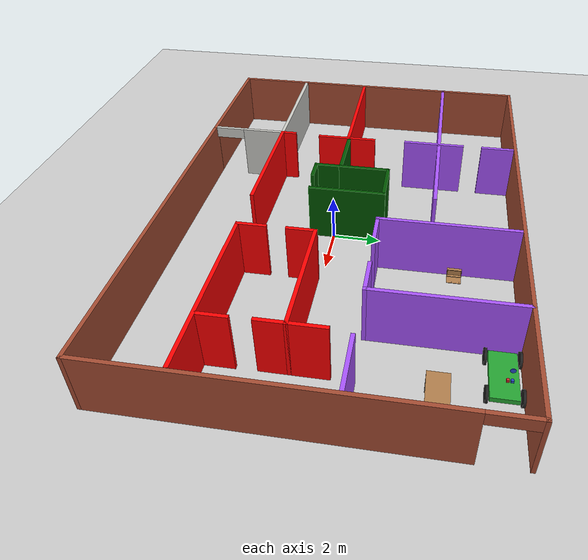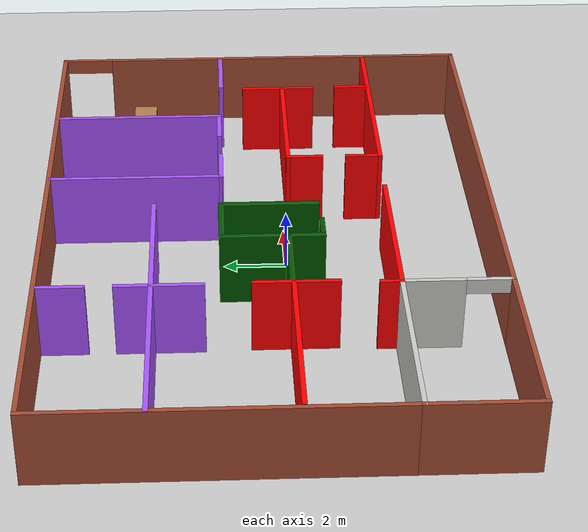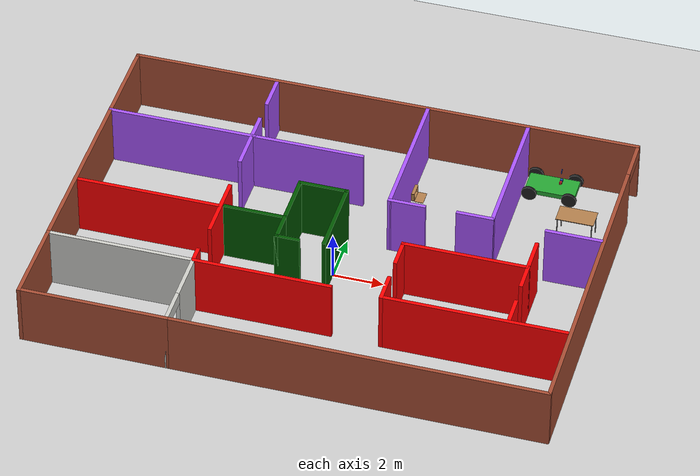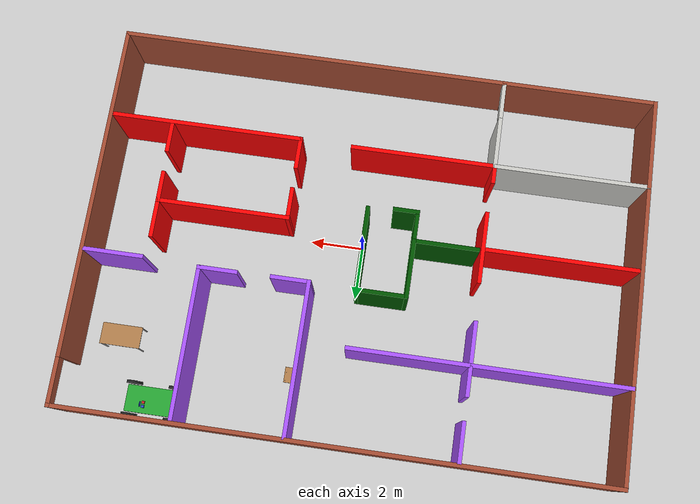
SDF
<sdf version="1.6">
 <world name="default">
  <model name="ground_plane">
   <static>1</static>
   <link name="link">
    <collision name="collision">
     <geometry><plane><normal>0 0 1</normal><size>100 100</size></plane></geometry>
     <surface><friction><ode><mu>100</mu><mu2>50</mu2></ode></friction></surface>
    </collision>
    <visual name="visual">
     <cast_shadows>0</cast_shadows>
     <geometry><plane><normal>0 0 1</normal><size>100 100</size></plane></geometry>
     <material>
      <script><uri>file://media/materials/scripts/gazebo.material</uri><name>Gazebo/Grey</name></script>
     </material>
    </visual>
   </link>
  </model>
  <model name="myhome">
   <pose>-0.1029 0.56421 0 0 -0 0</pose>
   <link name="Wall_0">
    <collision name="Wall_0_Collision">
     <geometry><box><size>11 0.15 2.5</size></box></geometry>
     <pose>0 0 1.25 0 -0 0</pose>
    </collision>
    <visual name="Wall_0_Visual">
     <pose>0 0 1.25 0 -0 0</pose>
     <geometry><box><size>11 0.15 2.5</size></box></geometry>
     <material>
      <script><uri>file://media/materials/scripts/gazebo.material</uri><name>Gazebo/Bricks</name></script>
      <ambient>1 1 1 1</ambient>
     </material>
     <meta><layer>0</layer></meta>
    </visual>
    <pose>-10.175 1.75 0 0 -0 1.5708</pose>
   </link>
   <link name="Wall_1">
    <collision name="Wall_1_Collision">
     <geometry><box><size>20.5 0.15 2.5</size></box></geometry>
     <pose>0 0 1.25 0 -0 0</pose>
    </collision>
    <visual name="Wall_1_Visual">
     <pose>0 0 1.25 0 -0 0</pose>
     <geometry><box><size>20.5 0.15 2.5</size></box></geometry>
     <material>
      <script><uri>file://media/materials/scripts/gazebo.material</uri><name>Gazebo/Bricks</name></script>
      <ambient>1 1 1 1</ambient>
     </material>
     <meta><layer>0</layer></meta>
    </visual>
    <pose>0 7.175 0 0 -0 0</pose>
   </link>
   <link name="Wall_12">
    <collision name="Wall_12_Collision">
     <geometry><box><size>5.75 0.15 2.5</size></box></geometry>
     <pose>0 0 1.25 0 -0 0</pose>
    </collision>
    <visual name="Wall_12_Visual">
     <pose>0 0 1.25 0 -0 0</pose>
     <geometry><box><size>5.75 0.15 2.5</size></box></geometry>
     <material>
      <script><uri>file://media/materials/scripts/gazebo.material</uri><name>Gazebo/Grey</name></script>
      <ambient>0.666667 0.333333 1 1</ambient>
     </material>
     <meta><layer>0</layer></meta>
    </visual>
    <pose>5.80825 4.32699 0 0 0 -1.5708</pose>
   </link>
   <link name="Wall_18">
    <collision name="Wall_18_Collision">
     <geometry><box><size>5.5 0.15 2.5</size></box></geometry>
     <pose>0 0 1.25 0 -0 0</pose>
    </collision>
    <visual name="Wall_18_Visual">
     <pose>0 0 1.25 0 -0 0</pose>
     <geometry><box><size>5.5 0.15 2.5</size></box></geometry>
     <material>
      <script><uri>file://media/materials/scripts/gazebo.material</uri><name>Gazebo/Grey</name></script>
      <ambient>1 0 0 1</ambient>
     </material>
     <meta><layer>0</layer></meta>
    </visual>
    <pose>-1.75 -3.825 0 0 -0 0</pose>
   </link>
   <link name="Wall_2">
    <pose>10.175 0 0 0 0 -1.5708</pose>
    <visual name="Wall_2_Visual_0">
     <pose>-7.17641 0 1.25 0 -0 0</pose>
     <geometry><box><size>0.147184 0.15 2.5</size></box></geometry>
     <material>
      <script><uri>file://media/materials/scripts/gazebo.material</uri><name>Gazebo/Bricks</name></script>
      <ambient>1 1 1 1</ambient>
     </material>
     <meta><layer>0</layer></meta>
    </visual>
    <collision name="Wall_2_Collision_0">
     <geometry><box><size>0.147184 0.15 2.5</size></box></geometry>
     <pose>-7.17641 0 1.25 0 -0 0</pose>
    </collision>
    <visual name="Wall_2_Visual_1">
     <pose>0.893682 0 1.25 0 -0 0</pose>
     <geometry><box><size>12.7126 0.15 2.5</size></box></geometry>
     <material>
      <script><uri>file://media/materials/scripts/gazebo.material</uri><name>Gazebo/Bricks</name></script>
      <ambient>1 1 1 1</ambient>
     </material>
     <meta><layer>0</layer></meta>
    </visual>
    <collision name="Wall_2_Collision_1">
     <geometry><box><size>12.7126 0.15 2.5</size></box></geometry>
     <pose>0.893682 0 1.25 0 -0 0</pose>
    </collision>
    <visual name="Wall_2_Visual_2">
     <pose>-6.28273 0 2.25 0 -0 0</pose>
     <geometry><box><size>1.64018 0.15 0.5</size></box></geometry>
     <material>
      <script><uri>file://media/materials/scripts/gazebo.material</uri><name>Gazebo/Bricks</name></script>
      <ambient>1 1 1 1</ambient>
     </material>
     <meta><layer>0</layer></meta>
    </visual>
    <collision name="Wall_2_Collision_2">
     <geometry><box><size>1.64018 0.15 0.5</size></box></geometry>
     <pose>-6.28273 0 2.25 0 -0 0</pose>
    </collision>
   </link>
   <link name="Wall_20">
    <collision name="Wall_20_Collision">
     <geometry><box><size>7.25 0.15 2.5</size></box></geometry>
     <pose>0 0 1.25 0 -0 0</pose>
    </collision>
    <visual name="Wall_20_Visual">
     <pose>0 0 1.25 0 -0 0</pose>
     <geometry><box><size>7.25 0.15 2.5</size></box></geometry>
     <material>
      <script><uri>file://media/materials/scripts/gazebo.material</uri><name>Gazebo/Grey</name></script>
      <ambient>1 0 0 1</ambient>
     </material>
     <meta><layer>0</layer></meta>
    </visual>
    <pose>6.46692 -3.86004 0 0 -0 0</pose>
   </link>
   <link name="Wall_22">
    <collision name="Wall_22_Collision">
     <geometry><box><size>2.249 0.15 2.5</size></box></geometry>
     <pose>0 0 1.25 0 -0 0</pose>
    </collision>
    <visual name="Wall_22_Visual">
     <pose>0 0 1.25 0 -0 0</pose>
     <geometry><box><size>2.249 0.15 2.5</size></box></geometry>
     <material>
      <script><uri>file://media/materials/scripts/gazebo.material</uri><name>Gazebo/Grey</name></script>
      <ambient>0.666667 0.333333 1 1</ambient>
     </material>
     <meta><layer>0</layer></meta>
    </visual>
    <pose>9.00955 1.43713 0 0 -0 0</pose>
   </link>
   <link name="Wall_3">
    <collision name="Wall_3_Collision">
     <geometry><box><size>14.75 0.15 2.5</size></box></geometry>
     <pose>0 0 1.25 0 -0 0</pose>
    </collision>
    <visual name="Wall_3_Visual">
     <pose>0 0 1.25 0 -0 0</pose>
     <geometry><box><size>14.75 0.15 2.5</size></box></geometry>
     <material>
      <script><uri>file://media/materials/scripts/gazebo.material</uri><name>Gazebo/Bricks</name></script>
      <ambient>1 1 1 1</ambient>
     </material>
     <meta><layer>0</layer></meta>
    </visual>
    <pose>2.875 -7.175 0 0 -0 3.14159</pose>
   </link>
   <link name="Wall_30">
    <collision name="Wall_30_Collision">
     <geometry><box><size>5.75 0.15 2.5</size></box></geometry>
     <pose>0 0 1.25 0 -0 0</pose>
    </collision>
    <visual name="Wall_30_Visual">
     <pose>0 0 1.25 0 -0 0</pose>
     <geometry><box><size>5.75 0.15 2.5</size></box></geometry>
     <material>
      <script><uri>file://media/materials/scripts/gazebo.material</uri><name>Gazebo/Grey</name></script>
      <ambient>1 0 0 1</ambient>
     </material>
     <meta><layer>0</layer></meta>
    </visual>
    <pose>-7.21309 -0.598629 0 0 -0 0</pose>
   </link>
   <link name="Wall_32">
    <collision name="Wall_32_Collision">
     <geometry><box><size>6 0.15 2.5</size></box></geometry>
     <pose>0 0 1.25 0 -0 0</pose>
    </collision>
    <visual name="Wall_32_Visual">
     <pose>0 0 1.25 0 -0 0</pose>
     <geometry><box><size>6 0.15 2.5</size></box></geometry>
     <material>
      <script><uri>file://media/materials/scripts/gazebo.material</uri><name>Gazebo/Grey</name></script>
      <ambient>0.666667 0.333333 1 1</ambient>
     </material>
     <meta><layer>0</layer></meta>
    </visual>
    <pose>-7.22687 3.68053 0 0 -0 0</pose>
   </link>
   <link name="Wall_34">
    <collision name="Wall_34_Collision">
     <geometry><box><size>2.75 0.15 2.5</size></box></geometry>
     <pose>0 0 1.25 0 -0 0</pose>
    </collision>
    <visual name="Wall_34_Visual">
     <pose>0 0 1.25 0 -0 0</pose>
     <geometry><box><size>2.75 0.15 2.5</size></box></geometry>
     <material>
      <script><uri>file://media/materials/scripts/gazebo.material</uri><name>Gazebo/Grey</name></script>
      <ambient>0.666667 0.333333 1 1</ambient>
     </material>
     <meta><layer>0</layer></meta>
    </visual>
    <pose>-4.39439 3.43427 0 0 0 -1.5708</pose>
   </link>
   <link name="Wall_36">
    <collision name="Wall_36_Collision">
     <geometry><box><size>2.7 0.15 2.5</size></box></geometry>
     <pose>0 0 1.25 0 -0 0</pose>
    </collision>
    <visual name="Wall_36_Visual">
     <pose>0 0 1.25 0 -0 0</pose>
     <geometry><box><size>2.7 0.15 2.5</size></box></geometry>
     <material>
      <script><uri>file://media/materials/scripts/gazebo.material</uri><name>Gazebo/Grey</name></script>
      <ambient>1 0 0 1</ambient>
     </material>
     <meta><layer>0</layer></meta>
    </visual>
    <pose>-4.34609 -0.670837 0 0 0 -1.5708</pose>
   </link>
   <link name="Wall_38">
    <collision name="Wall_38_Collision">
     <geometry><box><size>5.75 0.15 2.5</size></box></geometry>
     <pose>0 0 1.25 0 -0 0</pose>
    </collision>
    <visual name="Wall_38_Visual">
     <pose>0 0 1.25 0 -0 0</pose>
     <geometry><box><size>5.75 0.15 2.5</size></box></geometry>
     <material>
      <script><uri>file://media/materials/scripts/gazebo.material</uri><name>Gazebo/Grey</name></script>
      <ambient>0.666667 0.333333 1 1</ambient>
     </material>
     <meta><layer>0</layer></meta>
    </visual>
    <pose>1.76127 4.30479 0 0 0 -1.57115</pose>
   </link>
   <link name="Wall_4">
    <pose>-4.425 -5.5 0 0 -0 1.5708</pose>
    <visual name="Wall_4_Visual_0">
     <pose>-1.68521 0 1.25 0 -0 0</pose>
     <geometry><box><size>0.129586 0.15 2.5</size></box></geometry>
     <material>
      <script><uri>file://media/materials/scripts/gazebo.material</uri><name>Gazebo/CeilingTiled</name></script>
      <ambient>1 0 0 1</ambient>
     </material>
     <meta><layer>0</layer></meta>
    </visual>
    <collision name="Wall_4_Collision_0">
     <geometry><box><size>0.129586 0.15 2.5</size></box></geometry>
     <pose>-1.68521 0 1.25 0 -0 0</pose>
    </collision>
    <visual name="Wall_4_Visual_1">
     <pose>0.746099 0 1.25 0 -0 0</pose>
     <geometry><box><size>2.0078 0.15 2.5</size></box></geometry>
     <material>
      <script><uri>file://media/materials/scripts/gazebo.material</uri><name>Gazebo/CeilingTiled</name></script>
      <ambient>1 0 0 1</ambient>
     </material>
     <meta><layer>0</layer></meta>
    </visual>
    <collision name="Wall_4_Collision_1">
     <geometry><box><size>2.0078 0.15 2.5</size></box></geometry>
     <pose>0.746099 0 1.25 0 -0 0</pose>
    </collision>
    <visual name="Wall_4_Visual_2">
     <pose>-0.939108 0 2.25 0 -0 0</pose>
     <geometry><box><size>1.36261 0.15 0.5</size></box></geometry>
     <material>
      <script><uri>file://media/materials/scripts/gazebo.material</uri><name>Gazebo/CeilingTiled</name></script>
      <ambient>1 0 0 1</ambient>
     </material>
     <meta><layer>0</layer></meta>
    </visual>
    <collision name="Wall_4_Collision_2">
     <geometry><box><size>1.36261 0.15 0.5</size></box></geometry>
     <pose>-0.939108 0 2.25 0 -0 0</pose>
    </collision>
   </link>
   <link name="Wall_40">
    <collision name="Wall_40_Collision">
     <geometry><box><size>4.5 0.15 2.5</size></box></geometry>
     <pose>0 0 1.25 0 -0 0</pose>
    </collision>
    <visual name="Wall_40_Visual">
     <pose>0 0 1.25 0 -0 0</pose>
     <geometry><box><size>4.5 0.15 2.5</size></box></geometry>
     <material>
      <script><uri>file://media/materials/scripts/gazebo.material</uri><name>Gazebo/Grey</name></script>
      <ambient>0.666667 0.333333 1 1</ambient>
     </material>
     <meta><layer>0</layer></meta>
    </visual>
    <pose>-2.12687 3.68053 0 0 -0 0</pose>
   </link>
   <link name="Wall_42">
    <collision name="Wall_42_Collision">
     <geometry><box><size>2.5 0.15 2.5</size></box></geometry>
     <pose>0 0 1.25 0 -0 0</pose>
    </collision>
    <visual name="Wall_42_Visual">
     <pose>0 0 1.25 0 -0 0</pose>
     <geometry><box><size>2.5 0.15 2.5</size></box></geometry>
     <material>
      <script><uri>file://media/materials/scripts/gazebo.material</uri><name>Gazebo/Grey</name></script>
      <ambient>0 0.333333 0 1</ambient>
     </material>
     <meta><layer>0</layer></meta>
    </visual>
    <pose>-2.98604 -0.552368 0 0 -0 0</pose>
   </link>
   <link name="Wall_43">
    <collision name="Wall_43_Collision">
     <geometry><box><size>2.25 0.15 2.5</size></box></geometry>
     <pose>0 0 1.25 0 -0 0</pose>
    </collision>
    <visual name="Wall_43_Visual">
     <pose>0 0 1.25 0 -0 0</pose>
     <geometry><box><size>2.25 0.15 2.5</size></box></geometry>
     <material>
      <script><uri>file://media/materials/scripts/gazebo.material</uri><name>Gazebo/Grey</name></script>
      <ambient>0 0.333333 0 1</ambient>
     </material>
     <meta><layer>0</layer></meta>
    </visual>
    <pose>-1.81104 0.497632 0 0 -0 1.5708</pose>
   </link>
   <link name="Wall_44">
    <collision name="Wall_44_Collision">
     <geometry><box><size>2 0.15 2.5</size></box></geometry>
     <pose>0 0 1.25 0 -0 0</pose>
    </collision>
    <visual name="Wall_44_Visual">
     <pose>0 0 1.25 0 -0 0</pose>
     <geometry><box><size>2 0.15 2.5</size></box></geometry>
     <material>
      <script><uri>file://media/materials/scripts/gazebo.material</uri><name>Gazebo/Grey</name></script>
      <ambient>0 0.333333 0 1</ambient>
     </material>
     <meta><layer>0</layer></meta>
    </visual>
    <pose>-0.886042 1.54763 0 0 -0 0</pose>
   </link>
   <link name="Wall_45">
    <collision name="Wall_45_Collision">
     <geometry><box><size>3.25 0.15 2.5</size></box></geometry>
     <pose>0 0 1.25 0 -0 0</pose>
    </collision>
    <visual name="Wall_45_Visual">
     <pose>0 0 1.25 0 -0 0</pose>
     <geometry><box><size>3.25 0.15 2.5</size></box></geometry>
     <material>
      <script><uri>file://media/materials/scripts/gazebo.material</uri><name>Gazebo/Grey</name></script>
      <ambient>0 0.333333 0 1</ambient>
     </material>
     <meta><layer>0</layer></meta>
    </visual>
    <pose>0.038958 -0.002368 0 0 0 -1.5708</pose>
   </link>
   <link name="Wall_49">
    <collision name="Wall_49_Collision">
     <geometry><box><size>1.25 0.15 2.5</size></box></geometry>
     <pose>0 0 1.25 0 -0 0</pose>
    </collision>
    <visual name="Wall_49_Visual">
     <pose>0 0 1.25 0 -0 0</pose>
     <geometry><box><size>1.25 0.15 2.5</size></box></geometry>
     <material>
      <script><uri>file://media/materials/scripts/gazebo.material</uri><name>Gazebo/Grey</name></script>
      <ambient>0 0.333333 0 1</ambient>
     </material>
     <meta><layer>0</layer></meta>
    </visual>
    <pose>-1.81104 -1.10237 0 0 0 -1.5708</pose>
   </link>
   <link name="Wall_5">
    <collision name="Wall_5_Collision">
     <geometry><box><size>5.89995 0.15 2.5</size></box></geometry>
     <pose>0 0 1.25 0 -0 0</pose>
    </collision>
    <visual name="Wall_5_Visual">
     <pose>0 0 1.25 0 -0 0</pose>
     <geometry><box><size>5.89995 0.15 2.5</size></box></geometry>
     <material>
      <script><uri>file://media/materials/scripts/gazebo.material</uri><name>Gazebo/CeilingTiled</name></script>
      <ambient>1 0 0 1</ambient>
     </material>
     <meta><layer>0</layer></meta>
    </visual>
    <pose>-7.29998 -3.82493 0 0 -0 3.14157</pose>
   </link>
   <link name="Wall_50">
    <collision name="Wall_50_Collision">
     <geometry><box><size>1 0.15 2.5</size></box></geometry>
     <pose>0 0 1.25 0 -0 0</pose>
    </collision>
    <visual name="Wall_50_Visual">
     <pose>0 0 1.25 0 -0 0</pose>
     <geometry><box><size>1 0.15 2.5</size></box></geometry>
     <material>
      <script><uri>file://media/materials/scripts/gazebo.material</uri><name>Gazebo/Grey</name></script>
      <ambient>0 0.333333 0 1</ambient>
     </material>
     <meta><layer>0</layer></meta>
    </visual>
    <pose>-1.38604 -1.65237 0 0 -0 0</pose>
   </link>
   <link name="Wall_53">
    <collision name="Wall_53_Collision">
     <geometry><box><size>5 0.15 2.5</size></box></geometry>
     <pose>0 0 1.25 0 -0 0</pose>
    </collision>
    <visual name="Wall_53_Visual">
     <pose>0 0 1.25 0 -0 0</pose>
     <geometry><box><size>5 0.15 2.5</size></box></geometry>
     <material>
      <script><uri>file://media/materials/scripts/gazebo.material</uri><name>Gazebo/Grey</name></script>
      <ambient>1 0 0 1</ambient>
     </material>
     <meta><layer>0</layer></meta>
    </visual>
    <pose>5.34192 -0.760045 0 0 -0 0</pose>
   </link>
   <link name="Wall_54">
    <collision name="Wall_54_Collision">
     <geometry><box><size>1.5 0.15 2.5</size></box></geometry>
     <pose>0 0 1.25 0 -0 0</pose>
    </collision>
    <visual name="Wall_54_Visual">
     <pose>0 0 1.25 0 -0 0</pose>
     <geometry><box><size>1.5 0.15 2.5</size></box></geometry>
     <material>
      <script><uri>file://media/materials/scripts/gazebo.material</uri><name>Gazebo/Grey</name></script>
      <ambient>1 0 0 1</ambient>
     </material>
     <meta><layer>0</layer></meta>
    </visual>
    <pose>7.76692 -0.085045 0 0 -0 1.5708</pose>
   </link>
   <link name="Wall_56">
    <collision name="Wall_56_Collision">
     <geometry><box><size>1.5 0.15 2.5</size></box></geometry>
     <pose>0 0 1.25 0 -0 0</pose>
    </collision>
    <visual name="Wall_56_Visual">
     <pose>0 0 1.25 0 -0 0</pose>
     <geometry><box><size>1.5 0.15 2.5</size></box></geometry>
     <material>
      <script><uri>file://media/materials/scripts/gazebo.material</uri><name>Gazebo/Grey</name></script>
      <ambient>0.666667 0.333333 1 1</ambient>
     </material>
     <meta><layer>0</layer></meta>
    </visual>
    <pose>2.43527 1.50479 0 0 -0 0</pose>
   </link>
   <link name="Wall_58">
    <collision name="Wall_58_Collision">
     <geometry><box><size>1.5 0.15 2.5</size></box></geometry>
     <pose>0 0 1.25 0 -0 0</pose>
    </collision>
    <visual name="Wall_58_Visual">
     <pose>0 0 1.25 0 -0 0</pose>
     <geometry><box><size>1.5 0.15 2.5</size></box></geometry>
     <material>
      <script><uri>file://media/materials/scripts/gazebo.material</uri><name>Gazebo/Grey</name></script>
      <ambient>0.666667 0.333333 1 1</ambient>
     </material>
     <meta><layer>0</layer></meta>
    </visual>
    <pose>5.13325 1.52699 0 0 -0 3.14159</pose>
   </link>
   <link name="Wall_6">
    <collision name="Wall_6_Collision">
     <geometry><box><size>3.5 0.15 2.5</size></box></geometry>
     <pose>0 0 1.25 0 -0 0</pose>
    </collision>
    <visual name="Wall_6_Visual">
     <pose>0 0 1.25 0 -0 0</pose>
     <geometry><box><size>3.5 0.15 2.5</size></box></geometry>
     <material>
      <script><uri>file://media/materials/scripts/gazebo.material</uri><name>Gazebo/Bricks</name></script>
      <ambient>1 1 1 1</ambient>
     </material>
     <meta><layer>0</layer></meta>
    </visual>
    <pose>-10.175 -5.49987 0 0 0 -1.5708</pose>
   </link>
   <link name="Wall_60">
    <collision name="Wall_60_Collision">
     <geometry><box><size>1.5 0.15 2.5</size></box></geometry>
     <pose>0 0 1.25 0 -0 0</pose>
    </collision>
    <visual name="Wall_60_Visual">
     <pose>0 0 1.25 0 -0 0</pose>
     <geometry><box><size>1.5 0.15 2.5</size></box></geometry>
     <material>
      <script><uri>file://media/materials/scripts/gazebo.material</uri><name>Gazebo/Grey</name></script>
      <ambient>0.666667 0.333333 1 1</ambient>
     </material>
     <meta><layer>0</layer></meta>
    </visual>
    <pose>-4.39235 6.3826 0 0 0 -1.5708</pose>
   </link>
   <link name="Wall_62">
    <collision name="Wall_62_Collision">
     <geometry><box><size>0.75 0.15 2.5</size></box></geometry>
     <pose>0 0 1.25 0 -0 0</pose>
    </collision>
    <visual name="Wall_62_Visual">
     <pose>0 0 1.25 0 -0 0</pose>
     <geometry><box><size>0.75 0.15 2.5</size></box></geometry>
     <material>
      <script><uri>file://media/materials/scripts/gazebo.material</uri><name>Gazebo/Grey</name></script>
      <ambient>1 0 0 1</ambient>
     </material>
     <meta><layer>0</layer></meta>
    </visual>
    <pose>-4.425 -3.525 0 0 -0 1.5708</pose>
   </link>
   <link name="Wall_64">
    <collision name="Wall_64_Collision">
     <geometry><box><size>1.2 0.15 2.5</size></box></geometry>
     <pose>0 0 1.25 0 -0 0</pose>
    </collision>
    <visual name="Wall_64_Visual">
     <pose>0 0 1.25 0 -0 0</pose>
     <geometry><box><size>1.2 0.15 2.5</size></box></geometry>
     <material>
      <script><uri>file://media/materials/scripts/gazebo.material</uri><name>Gazebo/Grey</name></script>
      <ambient>1 0 0 1</ambient>
     </material>
     <meta><layer>0</layer></meta>
    </visual>
    <pose>7.76692 -1.28504 0 0 0 -1.5708</pose>
   </link>
   <link name="Wall_66">
    <collision name="Wall_66_Collision">
     <geometry><box><size>1.2 0.15 2.5</size></box></geometry>
     <pose>0 0 1.25 0 -0 0</pose>
    </collision>
    <visual name="Wall_66_Visual">
     <pose>0 0 1.25 0 -0 0</pose>
     <geometry><box><size>1.2 0.15 2.5</size></box></geometry>
     <material>
      <script><uri>file://media/materials/scripts/gazebo.material</uri><name>Gazebo/Grey</name></script>
      <ambient>1 0 0 1</ambient>
     </material>
     <meta><layer>0</layer></meta>
    </visual>
    <pose>7.79748 -3.25164 0 0 0 -1.5708</pose>
   </link>
   <link name="Wall_68">
    <collision name="Wall_68_Collision">
     <geometry><box><size>1.25 0.15 2.5</size></box></geometry>
     <pose>0 0 1.25 0 -0 0</pose>
    </collision>
    <visual name="Wall_68_Visual">
     <pose>0 0 1.25 0 -0 0</pose>
     <geometry><box><size>1.25 0.15 2.5</size></box></geometry>
     <material>
      <script><uri>file://media/materials/scripts/gazebo.material</uri><name>Gazebo/Grey</name></script>
      <ambient>1 0 0 1</ambient>
     </material>
     <meta><layer>0</layer></meta>
    </visual>
    <pose>2.91692 -1.31004 0 0 0 -1.5708</pose>
   </link>
   <link name="Wall_70">
    <collision name="Wall_70_Collision">
     <geometry><box><size>1.25 0.15 2.5</size></box></geometry>
     <pose>0 0 1.25 0 -0 0</pose>
    </collision>
    <visual name="Wall_70_Visual">
     <pose>0 0 1.25 0 -0 0</pose>
     <geometry><box><size>1.25 0.15 2.5</size></box></geometry>
     <material>
      <script><uri>file://media/materials/scripts/gazebo.material</uri><name>Gazebo/Grey</name></script>
      <ambient>1 0 0 1</ambient>
     </material>
     <meta><layer>0</layer></meta>
    </visual>
    <pose>2.91692 -3.31005 0 0 -0 1.5708</pose>
   </link>
   <link name="Wall_9">
    <collision name="Wall_9_Collision">
     <geometry><box><size>5.75 0.15 2.5</size></box></geometry>
     <pose>0 0 1.25 0 -0 0</pose>
    </collision>
    <visual name="Wall_9_Visual">
     <pose>0 0 1.25 0 -0 0</pose>
     <geometry><box><size>5.75 0.15 2.5</size></box></geometry>
     <material>
      <script><uri>file://media/materials/scripts/gazebo.material</uri><name>Gazebo/Bricks</name></script>
      <ambient>1 1 1 1</ambient>
     </material>
     <meta><layer>0</layer></meta>
    </visual>
    <pose>-7.225 -7.175 0 0 -0 3.14159</pose>
   </link>
   <static>1</static>
  </model>
  <model name="wooden_case_metal_peg">
   <link name="wooden_case::base">
    <pose>0 0 0.024 0 -0 0</pose>
    <inertial>
     <pose>-0.022184 0 0.171592 0 -0 0</pose>
     <mass>3.96264</mass>
     <inertia>
      <ixx>0.213536</ixx>
      <ixy>0</ixy>
      <ixz>0.000779377</ixz>
      <iyy>0.0708943</iyy>
      <iyz>0</iyz>
      <izz>0.154604</izz>
     </inertia>
    </inertial>
    <collision name="collision_back">
     <pose>-0.053975 0 0.1778 0 -0 0</pose>
     <geometry><box><size>0.01905 0.5461 0.3175</size></box></geometry>
     <surface>
      <contact>
       <poissons_ratio>0.347</poissons_ratio>
       <elastic_modulus>8.8e+09</elastic_modulus>
       <ode><kp>100000</kp><kd>100</kd><max_vel>100</max_vel><min_depth>0.001</min_depth></ode>
      </contact>
      <friction>
       <torsional>
        <coefficient>1</coefficient>
        <use_patch_radius>0</use_patch_radius>
        <surface_radius>0.01</surface_radius>
       </torsional>
      </friction>
     </surface>
    </collision>
    <visual name="visual_back">
     <pose>-0.053975 0 0.1778 0 -0 0</pose>
     <geometry><box><size>0.01905 0.5461 0.3175</size></box></geometry>
     <material>
      <script><uri>file://media/materials/scripts/gazebo.material</uri><name>Gazebo/Wood</name></script>
     </material>
    </visual>
    <collision name="collision_bottom">
     <pose>0 0 0.009525 0 -0 0</pose>
     <geometry><box><size>0.127 0.5842 0.01905</size></box></geometry>
     <surface>
      <contact>
       <poissons_ratio>0.347</poissons_ratio>
       <elastic_modulus>8.8e+09</elastic_modulus>
       <ode><kp>100000</kp><kd>100</kd><max_vel>100</max_vel><min_depth>0.001</min_depth></ode>
      </contact>
      <friction>
       <torsional>
        <coefficient>1</coefficient>
        <use_patch_radius>0</use_patch_radius>
        <surface_radius>0.01</surface_radius>
       </torsional>
      </friction>
     </surface>
    </collision>
    <visual name="visual_bottom">
     <pose>0 0 0.009525 0 -0 0</pose>
     <geometry><box><size>0.127 0.5842 0.01905</size></box></geometry>
     <material>
      <script><uri>file://media/materials/scripts/gazebo.material</uri><name>Gazebo/Wood</name></script>
     </material>
    </visual>
    <collision name="collision_top">
     <pose>0 0 0.346075 0 -0 0</pose>
     <geometry><box><size>0.127 0.5842 0.01905</size></box></geometry>
     <surface>
      <contact>
       <poissons_ratio>0.347</poissons_ratio>
       <elastic_modulus>8.8e+09</elastic_modulus>
       <ode><kp>100000</kp><kd>100</kd><max_vel>100</max_vel><min_depth>0.001</min_depth></ode>
      </contact>
      <friction>
       <torsional>
        <coefficient>1</coefficient>
        <use_patch_radius>0</use_patch_radius>
        <surface_radius>0.01</surface_radius>
       </torsional>
      </friction>
     </surface>
    </collision>
    <visual name="visual_top">
     <pose>0 0 0.346075 0 -0 0</pose>
     <geometry><box><size>0.127 0.5842 0.01905</size></box></geometry>
     <material>
      <script><uri>file://media/materials/scripts/gazebo.material</uri><name>Gazebo/Wood</name></script>
     </material>
    </visual>
    <collision name="collision_left">
     <pose>0 -0.282575 0.1778 0 -0 0</pose>
     <geometry><box><size>0.127 0.01905 0.3175</size></box></geometry>
     <surface>
      <contact>
       <poissons_ratio>0.347</poissons_ratio>
       <elastic_modulus>8.8e+09</elastic_modulus>
       <ode><kp>100000</kp><kd>100</kd><max_vel>100</max_vel><min_depth>0.001</min_depth></ode>
      </contact>
      <friction>
       <torsional>
        <coefficient>1</coefficient>
        <use_patch_radius>0</use_patch_radius>
        <surface_radius>0.01</surface_radius>
       </torsional>
      </friction>
     </surface>
    </collision>
    <visual name="visual_left">
     <pose>0 -0.282575 0.1778 0 -0 0</pose>
     <geometry><box><size>0.127 0.01905 0.3175</size></box></geometry>
     <material>
      <script><uri>file://media/materials/scripts/gazebo.material</uri><name>Gazebo/Wood</name></script>
     </material>
    </visual>
    <collision name="collision_right">
     <pose>0 0.282575 0.1778 0 -0 0</pose>
     <geometry><box><size>0.127 0.01905 0.3175</size></box></geometry>
     <surface>
      <contact>
       <poissons_ratio>0.347</poissons_ratio>
       <elastic_modulus>8.8e+09</elastic_modulus>
       <ode><kp>100000</kp><kd>100</kd><max_vel>100</max_vel><min_depth>0.001</min_depth></ode>
      </contact>
      <friction>
       <torsional>
        <coefficient>1</coefficient>
        <use_patch_radius>0</use_patch_radius>
        <surface_radius>0.01</surface_radius>
       </torsional>
      </friction>
     </surface>
    </collision>
    <visual name="visual_right">
     <pose>0 0.282575 0.1778 0 -0 0</pose>
     <geometry><box><size>0.127 0.01905 0.3175</size></box></geometry>
     <material>
      <script><uri>file://media/materials/scripts/gazebo.material</uri><name>Gazebo/Wood</name></script>
     </material>
    </visual>
    <collision name="collision_block_left">
     <pose>0.0095 -0.2151 -0.012 0 -0 0</pose>
     <geometry><box><size>0.108 0.05 0.024</size></box></geometry>
     <surface>
      <contact>
       <poissons_ratio>0.347</poissons_ratio>
       <elastic_modulus>8.8e+09</elastic_modulus>
       <ode><kp>100000</kp><kd>100</kd><max_vel>100</max_vel><min_depth>0.001</min_depth></ode>
      </contact>
      <friction>
       <torsional>
        <coefficient>1</coefficient>
        <use_patch_radius>0</use_patch_radius>
        <surface_radius>0.01</surface_radius>
       </torsional>
      </friction>
     </surface>
    </collision>
    <visual name="visual_block_left">
     <pose>0.0095 -0.2151 -0.012 0 -0 0</pose>
     <geometry><box><size>0.108 0.05 0.024</size></box></geometry>
     <material>
      <script><uri>file://media/materials/scripts/gazebo.material</uri><name>Gazebo/Wood</name></script>
     </material>
    </visual>
    <collision name="collision_block_right">
     <pose>0.0095 0.2151 -0.012 0 -0 0</pose>
     <geometry><box><size>0.108 0.05 0.024</size></box></geometry>
     <surface>
      <contact>
       <poissons_ratio>0.347</poissons_ratio>
       <elastic_modulus>8.8e+09</elastic_modulus>
       <ode><kp>100000</kp><kd>100</kd><max_vel>100</max_vel><min_depth>0.001</min_depth></ode>
      </contact>
      <friction>
       <torsional>
        <coefficient>1</coefficient>
        <use_patch_radius>0</use_patch_radius>
        <surface_radius>0.01</surface_radius>
       </torsional>
      </friction>
     </surface>
    </collision>
    <visual name="visual_block_right">
     <pose>0.0095 0.2151 -0.012 0 -0 0</pose>
     <geometry><box><size>0.108 0.05 0.024</size></box></geometry>
     <material>
      <script><uri>file://media/materials/scripts/gazebo.material</uri><name>Gazebo/Wood</name></script>
     </material>
    </visual>
   </link>
   <link name="wooden_case::lid">
    <pose>0.243775 0 0.009525 0 -0 0</pose>
    <inertial>
     <mass>1.97874</mass>
     <inertia>
      <ixx>0.0563367</ixx>
      <ixy>0</ixy>
      <ixz>0</ixz>
      <iyy>0.020911</iyy>
      <iyz>0</iyz>
      <izz>0.0771281</izz>
     </inertia>
    </inertial>
    <collision name="collision">
     <geometry><box><size>0.3556 0.5842 0.01905</size></box></geometry>
     <surface>
      <contact>
       <poissons_ratio>0.347</poissons_ratio>
       <elastic_modulus>8.8e+09</elastic_modulus>
       <ode><kp>100000</kp><kd>100</kd><max_vel>100</max_vel><min_depth>0.001</min_depth></ode>
      </contact>
      <friction>
       <torsional>
        <coefficient>1</coefficient>
        <use_patch_radius>0</use_patch_radius>
        <surface_radius>0.01</surface_radius>
       </torsional>
      </friction>
     </surface>
    </collision>
    <visual name="visual">
     <geometry><box><size>0.3556 0.5842 0.01905</size></box></geometry>
     <material>
      <script><uri>file://media/materials/scripts/gazebo.material</uri><name>Gazebo/Wood</name></script>
     </material>
    </visual>
    <visual name="tee_nut_1">
     <pose>0.122 -0.216 0 0 -0 0</pose>
     <geometry><cylinder><radius>0.00635</radius><length>0.0192405</length></cylinder></geometry>
     <material>
      <script><uri>file://media/materials/scripts/gazebo.material</uri><name>Gazebo/Grey</name></script>
     </material>
    </visual>
    <visual name="tee_nut_2">
     <pose>0.122 -0.088 0 0 -0 0</pose>
     <geometry><cylinder><radius>0.00635</radius><length>0.0192405</length></cylinder></geometry>
     <material>
      <script><uri>file://media/materials/scripts/gazebo.material</uri><name>Gazebo/Grey</name></script>
     </material>
    </visual>
    <visual name="tee_nut_3">
     <pose>0.122 0.088 0 0 -0 0</pose>
     <geometry><cylinder><radius>0.00635</radius><length>0.0192405</length></cylinder></geometry>
     <material>
      <script><uri>file://media/materials/scripts/gazebo.material</uri><name>Gazebo/Grey</name></script>
     </material>
    </visual>
    <visual name="tee_nut_4">
     <pose>0.122 0.216 0 0 -0 0</pose>
     <geometry><cylinder><radius>0.00635</radius><length>0.0192405</length></cylinder></geometry>
     <material>
      <script><uri>file://media/materials/scripts/gazebo.material</uri><name>Gazebo/Grey</name></script>
     </material>
    </visual>
   </link>
   <joint name="wooden_case::lid_hinge" type="revolute">
    <pose>-0.1778 0 0.01905 0 -0 0</pose>
    <parent>wooden_case::base</parent>
    <child>wooden_case::lid</child>
    <axis>
     <xyz>0 1 0</xyz>
     <limit><upper>0.523599</upper><lower>-1.5708</lower></limit>
     <use_parent_model_frame>0</use_parent_model_frame>
     <dynamics><spring_reference>0</spring_reference><spring_stiffness>0</spring_stiffness></dynamics>
    </axis>
   </joint>
   <link name="peg::link">
    <pose>0.365774 0.216 0.05005 0 -0 0</pose>
    <inertial>
     <mass>0.0121</mass>
     <inertia>
      <ixx>3.90898e-06</ixx>
      <ixy>0</ixy>
      <ixz>0</ixz>
      <iyy>3.90898e-06</iyy>
      <iyz>0</iyz>
      <izz>6.58845e-08</izz>
     </inertia>
    </inertial>
    <collision name="collision">
     <geometry><cylinder><radius>0.0033</radius><length>0.062</length></cylinder></geometry>
     <surface>
      <contact>
       <poissons_ratio>0.305</poissons_ratio>
       <elastic_modulus>2e+11</elastic_modulus>
       <ode><kp>100000</kp><kd>100</kd><max_vel>100</max_vel><min_depth>0.001</min_depth></ode>
      </contact>
      <friction>
       <torsional>
        <coefficient>1</coefficient>
        <use_patch_radius>0</use_patch_radius>
        <surface_radius>0.01</surface_radius>
       </torsional>
      </friction>
     </surface>
    </collision>
    <visual name="visual">
     <geometry><cylinder><radius>0.0033</radius><length>0.062</length></cylinder></geometry>
     <material>
      <script><uri>file://media/materials/scripts/gazebo.material</uri><name>Gazebo/Grey</name></script>
     </material>
    </visual>
   </link>
   <joint name="case_peg" type="revolute">
    <child>peg::link</child>
    <parent>wooden_case::lid</parent>
    <axis>
     <xyz>0 0 1</xyz>
     <limit><upper>0</upper><lower>0</lower></limit>
     <use_parent_model_frame>0</use_parent_model_frame>
     <dynamics><spring_reference>0</spring_reference><spring_stiffness>0</spring_stiffness></dynamics>
    </axis>
   </joint>
   <pose>1.81191 5.27379 -0.001057 0 -0.000428 -0.000217</pose>
  </model>
  <model name="table">
   <static>1</static>
   <link name="link">
    <collision name="surface">
     <pose>0 0 1 0 -0 0</pose>
     <geometry><box><size>1.5 0.8 0.03</size></box></geometry>
     <surface><friction><ode><mu>0.6</mu><mu2>0.6</mu2></ode></friction></surface>
    </collision>
    <visual name="visual1">
     <pose>0 0 1 0 -0 0</pose>
     <geometry><box><size>1.5 0.8 0.03</size></box></geometry>
     <material>
      <script><uri>file://media/materials/scripts/gazebo.material</uri><name>Gazebo/Wood</name></script>
     </material>
    </visual>
    <collision name="front_left_leg">
     <pose>0.68 0.38 0.5 0 -0 0</pose>
     <geometry><cylinder><radius>0.02</radius><length>1</length></cylinder></geometry>
    </collision>
    <visual name="front_left_leg">
     <pose>0.68 0.38 0.5 0 -0 0</pose>
     <geometry><cylinder><radius>0.02</radius><length>1</length></cylinder></geometry>
     <material>
      <script><uri>file://media/materials/scripts/gazebo.material</uri><name>Gazebo/Grey</name></script>
     </material>
    </visual>
    <collision name="front_right_leg">
     <pose>0.68 -0.38 0.5 0 -0 0</pose>
     <geometry><cylinder><radius>0.02</radius><length>1</length></cylinder></geometry>
    </collision>
    <visual name="front_right_leg">
     <pose>0.68 -0.38 0.5 0 -0 0</pose>
     <geometry><cylinder><radius>0.02</radius><length>1</length></cylinder></geometry>
     <material>
      <script><uri>file://media/materials/scripts/gazebo.material</uri><name>Gazebo/Grey</name></script>
     </material>
    </visual>
    <collision name="back_right_leg">
     <pose>-0.68 -0.38 0.5 0 -0 0</pose>
     <geometry><cylinder><radius>0.02</radius><length>1</length></cylinder></geometry>
    </collision>
    <visual name="back_right_leg">
     <pose>-0.68 -0.38 0.5 0 -0 0</pose>
     <geometry><cylinder><radius>0.02</radius><length>1</length></cylinder></geometry>
     <material>
      <script><uri>file://media/materials/scripts/gazebo.material</uri><name>Gazebo/Grey</name></script>
     </material>
    </visual>
    <collision name="back_left_leg">
     <pose>-0.68 0.38 0.5 0 -0 0</pose>
     <geometry><cylinder><radius>0.02</radius><length>1</length></cylinder></geometry>
    </collision>
    <visual name="back_left_leg">
     <pose>-0.68 0.38 0.5 0 -0 0</pose>
     <geometry><cylinder><radius>0.02</radius><length>1</length></cylinder></geometry>
     <material>
      <script><uri>file://media/materials/scripts/gazebo.material</uri><name>Gazebo/Grey</name></script>
     </material>
    </visual>
   </link>
   <pose>8.40201 4.7916 0 0 -0 0</pose>
  </model>
  <model name="car">
   <link name="chassis">
    <pose>0 0 0.3 0 -0 0</pose>
    <collision name="collision"><geometry><box><size>2 1 0.2</size></box></geometry></collision>
    <visual name="visual">
     <geometry><box><size>2 1 0.2</size></box></geometry>
     <material>
      <script><uri>file://media/materials/scripts/gazebo.material</uri><name>Gazebo/Green</name></script>
     </material>
    </visual>
    <inertial>
     <inertia><ixx>1</ixx><ixy>0</ixy><ixz>0</ixz><iyy>1</iyy><iyz>0</iyz><izz>1</izz></inertia>
     <mass>1</mass>
    </inertial>
   </link>
   <link name="front_left_wheel">
    <pose>0.8 0.6 0.3 -0 1.5707 1.5707</pose>
    <collision name="collision">
     <geometry><cylinder><radius>0.3</radius><length>0.1</length></cylinder></geometry>
    </collision>
    <visual name="visual">
     <geometry><cylinder><radius>0.3</radius><length>0.1</length></cylinder></geometry>
     <material>
      <script><uri>file://media/materials/scripts/gazebo.material</uri><name>Gazebo/Black</name></script>
     </material>
    </visual>
    <inertial>
     <inertia><ixx>1</ixx><ixy>0</ixy><ixz>0</ixz><iyy>1</iyy><iyz>0</iyz><izz>1</izz></inertia>
     <mass>1</mass>
    </inertial>
   </link>
   <link name="front_right_wheel">
    <pose>0.8 -0.6 0.3 -0 1.5707 1.5707</pose>
    <collision name="collision">
     <geometry><cylinder><radius>0.3</radius><length>0.1</length></cylinder></geometry>
    </collision>
    <visual name="visual">
     <geometry><cylinder><radius>0.3</radius><length>0.1</length></cylinder></geometry>
     <material>
      <script><uri>file://media/materials/scripts/gazebo.material</uri><name>Gazebo/Black</name></script>
     </material>
    </visual>
    <inertial>
     <inertia><ixx>1</ixx><ixy>0</ixy><ixz>0</ixz><iyy>1</iyy><iyz>0</iyz><izz>1</izz></inertia>
     <mass>1</mass>
    </inertial>
   </link>
   <link name="back_right_wheel">
    <pose>-0.8 -0.6 0.3 -0 1.5707 1.5707</pose>
    <collision name="collision">
     <geometry><cylinder><radius>0.3</radius><length>0.1</length></cylinder></geometry>
    </collision>
    <visual name="visual">
     <geometry><cylinder><radius>0.3</radius><length>0.1</length></cylinder></geometry>
     <material>
      <script><uri>file://media/materials/scripts/gazebo.material</uri><name>Gazebo/Black</name></script>
     </material>
    </visual>
    <inertial>
     <inertia><ixx>1</ixx><ixy>0</ixy><ixz>0</ixz><iyy>1</iyy><iyz>0</iyz><izz>1</izz></inertia>
     <mass>1</mass>
    </inertial>
   </link>
   <link name="back_left_wheel">
    <pose>-0.8 0.6 0.3 -0 1.5707 1.5707</pose>
    <collision name="collision">
     <geometry><cylinder><radius>0.3</radius><length>0.1</length></cylinder></geometry>
    </collision>
    <visual name="visual">
     <geometry><cylinder><radius>0.3</radius><length>0.1</length></cylinder></geometry>
     <material>
      <script><uri>file://media/materials/scripts/gazebo.material</uri><name>Gazebo/Black</name></script>
     </material>
    </visual>
    <inertial>
     <inertia><ixx>1</ixx><ixy>0</ixy><ixz>0</ixz><iyy>1</iyy><iyz>0</iyz><izz>1</izz></inertia>
     <mass>1</mass>
    </inertial>
   </link>
   <link name="gas_pedal">
    <pose>0.3 0.1 0.5 0 -0 0</pose>
    <collision name="collision"><geometry><box><size>0.1 0.1 0.1</size></box></geometry></collision>
    <visual name="visual">
     <geometry><box><size>0.1 0.1 0.1</size></box></geometry>
     <material>
      <script><uri>file://media/materials/scripts/gazebo.material</uri><name>Gazebo/Red</name></script>
     </material>
    </visual>
    <inertial>
     <inertia><ixx>1</ixx><ixy>0</ixy><ixz>0</ixz><iyy>1</iyy><iyz>0</iyz><izz>1</izz></inertia>
     <mass>1</mass>
    </inertial>
   </link>
   <link name="brake_pedal">
    <pose>0.3 0.25 0.5 0 -0 0</pose>
    <collision name="collision"><geometry><box><size>0.1 0.1 0.1</size></box></geometry></collision>
    <visual name="visual">
     <geometry><box><size>0.1 0.1 0.1</size></box></geometry>
     <material>
      <script><uri>file://media/materials/scripts/gazebo.material</uri><name>Gazebo/Blue</name></script>
     </material>
    </visual>
    <inertial>
     <inertia><ixx>1</ixx><ixy>0</ixy><ixz>0</ixz><iyy>1</iyy><iyz>0</iyz><izz>1</izz></inertia>
     <mass>1</mass>
    </inertial>
   </link>
   <link name="steering_wheel">
    <pose>0.3 0.2 1 0 1.5707 0</pose>
    <collision name="collision">
     <geometry><cylinder><radius>0.1</radius><length>0.01</length></cylinder></geometry>
    </collision>
    <visual name="visual">
     <geometry><cylinder><radius>0.1</radius><length>0.01</length></cylinder></geometry>
     <material>
      <script><uri>file://media/materials/scripts/gazebo.material</uri><name>Gazebo/Blue</name></script>
     </material>
    </visual>
    <inertial>
     <inertia><ixx>1</ixx><ixy>0</ixy><ixz>0</ixz><iyy>1</iyy><iyz>0</iyz><izz>1</izz></inertia>
     <mass>1</mass>
    </inertial>
   </link>
   <joint name="gas_joint" type="prismatic">
    <parent>chassis</parent>
    <child>gas_pedal</child>
    <axis>
     <xyz>1 0 0</xyz>
     <limit><lower>0</lower><upper>0.2</upper></limit>
     <use_parent_model_frame>1</use_parent_model_frame>
     <dynamics><spring_reference>0</spring_reference><spring_stiffness>0</spring_stiffness></dynamics>
    </axis>
   </joint>
   <joint name="brake_joint" type="prismatic">
    <parent>chassis</parent>
    <child>brake_pedal</child>
    <axis>
     <xyz>1 0 0</xyz>
     <limit><lower>0</lower><upper>0.2</upper></limit>
     <use_parent_model_frame>1</use_parent_model_frame>
     <dynamics><spring_reference>0</spring_reference><spring_stiffness>0</spring_stiffness></dynamics>
    </axis>
   </joint>
   <joint name="steering_joint" type="revolute">
    <parent>chassis</parent>
    <child>steering_wheel</child>
    <axis>
     <xyz>1 0 0</xyz>
     <limit><lower>-7.853</lower><upper>7.853</upper></limit>
     <use_parent_model_frame>1</use_parent_model_frame>
     <dynamics><spring_reference>0</spring_reference><spring_stiffness>0</spring_stiffness></dynamics>
    </axis>
   </joint>
   <joint name="front_left_joint" type="revolute2">
    <parent>chassis</parent>
    <child>front_left_wheel</child>
    <axis>
     <xyz>0 0 1</xyz>
     <limit><lower>8.6475e-06</lower><upper>8.6475e-06</upper></limit>
     <use_parent_model_frame>1</use_parent_model_frame>
     <dynamics><spring_reference>0</spring_reference><spring_stiffness>0</spring_stiffness></dynamics>
    </axis>
    <axis2>
     <xyz>0 1 0</xyz>
     <use_parent_model_frame>1</use_parent_model_frame>
     <dynamics><spring_reference>0</spring_reference><spring_stiffness>0</spring_stiffness></dynamics>
    </axis2>
    <physics><ode><limit><cfm>0</cfm><erp>0.9</erp></limit></ode></physics>
   </joint>
   <joint name="front_right_joint" type="revolute2">
    <parent>chassis</parent>
    <child>front_right_wheel</child>
    <axis>
     <xyz>0 0 1</xyz>
     <limit><lower>8.6475e-06</lower><upper>8.6475e-06</upper></limit>
     <use_parent_model_frame>1</use_parent_model_frame>
     <dynamics><spring_reference>0</spring_reference><spring_stiffness>0</spring_stiffness></dynamics>
    </axis>
    <axis2>
     <xyz>0 1 0</xyz>
     <use_parent_model_frame>1</use_parent_model_frame>
     <dynamics><spring_reference>0</spring_reference><spring_stiffness>0</spring_stiffness></dynamics>
    </axis2>
    <physics><ode><limit><cfm>0</cfm><erp>0.9</erp></limit></ode></physics>
   </joint>
   <joint name="back_right_joint" type="revolute2">
    <parent>chassis</parent>
    <child>back_right_wheel</child>
    <axis>
     <xyz>0 0 1</xyz>
     <limit><lower>0</lower><upper>0</upper></limit>
     <use_parent_model_frame>1</use_parent_model_frame>
     <dynamics><spring_reference>0</spring_reference><spring_stiffness>0</spring_stiffness></dynamics>
    </axis>
    <axis2>
     <xyz>0 1 0</xyz>
     <use_parent_model_frame>1</use_parent_model_frame>
     <dynamics><spring_reference>0</spring_reference><spring_stiffness>0</spring_stiffness></dynamics>
    </axis2>
    <physics><ode><limit><cfm>0</cfm><erp>0.9</erp></limit></ode></physics>
   </joint>
   <joint name="back_left_joint" type="revolute2">
    <parent>chassis</parent>
    <child>back_left_wheel</child>
    <axis>
     <xyz>0 0 1</xyz>
     <limit><lower>0</lower><upper>0</upper></limit>
     <use_parent_model_frame>1</use_parent_model_frame>
     <dynamics><spring_reference>0</spring_reference><spring_stiffness>0</spring_stiffness></dynamics>
    </axis>
    <axis2>
     <xyz>0 1 0</xyz>
     <use_parent_model_frame>1</use_parent_model_frame>
     <dynamics><spring_reference>0</spring_reference><spring_stiffness>0</spring_stiffness></dynamics>
    </axis2>
    <physics><ode><limit><cfm>0</cfm><erp>0.9</erp></limit></ode></physics>
   </joint>
   <plugin name="vehicle" filename="libVehiclePlugin.so">
    <front_left>front_left_joint</front_left>
    <front_right>front_right_joint</front_right>
    <back_left>back_left_joint</back_left>
    <back_right>back_right_joint</back_right>
    <gas>gas_joint</gas>
    <brake>brake_joint</brake>
    <steering>steering_joint</steering>
    <front_power>10</front_power>
    <rear_power>10</rear_power>
    <tire_angle_range>0.5</tire_angle_range>
    <max_speed>10</max_speed>
    <aero_load>0.1</aero_load>
   </plugin>
   <pose>6.92392 6.98941 -0.002616 -0.000273 0.000907 0.000741</pose>
  </model>
 </world>
</sdf>
